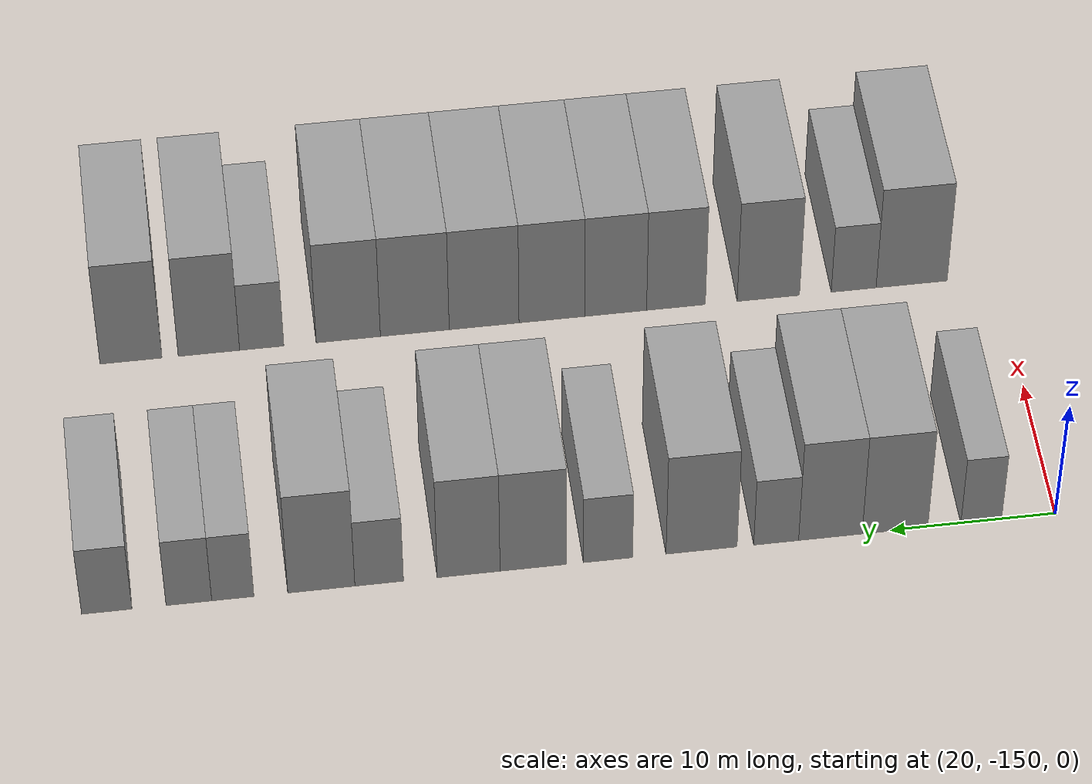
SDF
<sdf version="1.6">
 <world name="default">
  <model name="building_14">
   <static>1</static>
   <pose>25.0000 -145.4668 0 0.000000 0.000000 0.000000</pose>
   <link name="link">
    <pose>0 0 3.00 0 0 0</pose>
    <collision name="collision"><geometry><box><size>10.0000 2.4639 6.0000</size></box></geometry></collision>
    <visual name="visual">
     <cast_shadows>0</cast_shadows>
     <geometry><box><size>10.0000 2.4639 6.0000</size></box></geometry>
     <material>
      <script>
       <uri>model://grey_wall/materials/scripts</uri>
       <uri>model://grey_wall/materials/textures</uri>
       <name>vrc/grey_wall</name>
      </script>
     </material>
    </visual>
   </link>
  </model>
  <model name="building_15">
   <static>1</static>
   <pose>25.0000 -140.2559 0 0.000000 0.000000 0.000000</pose>
   <link name="link">
    <pose>0 0 4.50 0 0 0</pose>
    <collision name="collision"><geometry><box><size>10.0000 3.9579 9.0000</size></box></geometry></collision>
    <visual name="visual">
     <cast_shadows>0</cast_shadows>
     <geometry><box><size>10.0000 3.9579 9.0000</size></box></geometry>
     <material>
      <script>
       <uri>model://grey_wall/materials/scripts</uri>
       <uri>model://grey_wall/materials/textures</uri>
       <name>vrc/grey_wall</name>
      </script>
     </material>
    </visual>
   </link>
  </model>
  <model name="building_16">
   <static>1</static>
   <pose>25.0000 -136.3634 0 0.000000 0.000000 0.000000</pose>
   <link name="link">
    <pose>0 0 4.50 0 0 0</pose>
    <collision name="collision"><geometry><box><size>10.0000 3.8270 9.0000</size></box></geometry></collision>
    <visual name="visual">
     <cast_shadows>0</cast_shadows>
     <geometry><box><size>10.0000 3.8270 9.0000</size></box></geometry>
     <material>
      <script>
       <uri>model://grey_wall/materials/scripts</uri>
       <uri>model://grey_wall/materials/textures</uri>
       <name>vrc/grey_wall</name>
      </script>
     </material>
    </visual>
   </link>
  </model>
  <model name="building_17">
   <static>1</static>
   <pose>25.0000 -133.1001 0 0.000000 0.000000 0.000000</pose>
   <link name="link">
    <pose>0 0 3.00 0 0 0</pose>
    <collision name="collision"><geometry><box><size>10.0000 2.6995 6.0000</size></box></geometry></collision>
    <visual name="visual">
     <cast_shadows>0</cast_shadows>
     <geometry><box><size>10.0000 2.6995 6.0000</size></box></geometry>
     <material>
      <script>
       <uri>model://grey_wall/materials/scripts</uri>
       <uri>model://grey_wall/materials/textures</uri>
       <name>vrc/grey_wall</name>
      </script>
     </material>
    </visual>
   </link>
  </model>
  <model name="building_18">
   <static>1</static>
   <pose>25.0000 -128.6211 0 0.000000 0.000000 0.000000</pose>
   <link name="link">
    <pose>0 0 4.50 0 0 0</pose>
    <collision name="collision"><geometry><box><size>10.0000 4.2584 9.0000</size></box></geometry></collision>
    <visual name="visual">
     <cast_shadows>0</cast_shadows>
     <geometry><box><size>10.0000 4.2584 9.0000</size></box></geometry>
     <material>
      <script>
       <uri>model://grey_wall/materials/scripts</uri>
       <uri>model://grey_wall/materials/textures</uri>
       <name>vrc/grey_wall</name>
      </script>
     </material>
    </visual>
   </link>
  </model>
  <model name="building_19">
   <static>1</static>
   <pose>25.0000 -123.0242 0 0.000000 0.000000 0.000000</pose>
   <link name="link">
    <pose>0 0 3.00 0 0 0</pose>
    <collision name="collision"><geometry><box><size>10.0000 2.9353 6.0000</size></box></geometry></collision>
    <visual name="visual">
     <cast_shadows>0</cast_shadows>
     <geometry><box><size>10.0000 2.9353 6.0000</size></box></geometry>
     <material>
      <script>
       <uri>model://grey_wall/materials/scripts</uri>
       <uri>model://grey_wall/materials/textures</uri>
       <name>vrc/grey_wall</name>
      </script>
     </material>
    </visual>
   </link>
  </model>
  <model name="building_20">
   <static>1</static>
   <pose>25.0000 -118.5763 0 0.000000 0.000000 0.000000</pose>
   <link name="link">
    <pose>0 0 4.50 0 0 0</pose>
    <collision name="collision"><geometry><box><size>10.0000 3.9605 9.0000</size></box></geometry></collision>
    <visual name="visual">
     <cast_shadows>0</cast_shadows>
     <geometry><box><size>10.0000 3.9605 9.0000</size></box></geometry>
     <material>
      <script>
       <uri>model://grey_wall/materials/scripts</uri>
       <uri>model://grey_wall/materials/textures</uri>
       <name>vrc/grey_wall</name>
      </script>
     </material>
    </visual>
   </link>
  </model>
  <model name="building_21">
   <static>1</static>
   <pose>25.0000 -114.7280 0 0.000000 0.000000 0.000000</pose>
   <link name="link">
    <pose>0 0 4.50 0 0 0</pose>
    <collision name="collision"><geometry><box><size>10.0000 3.7361 9.0000</size></box></geometry></collision>
    <visual name="visual">
     <cast_shadows>0</cast_shadows>
     <geometry><box><size>10.0000 3.7361 9.0000</size></box></geometry>
     <material>
      <script>
       <uri>model://grey_wall/materials/scripts</uri>
       <uri>model://grey_wall/materials/textures</uri>
       <name>vrc/grey_wall</name>
      </script>
     </material>
    </visual>
   </link>
  </model>
  <model name="building_22">
   <static>1</static>
   <pose>25.0000 -109.4225 0 0.000000 0.000000 0.000000</pose>
   <link name="link">
    <pose>0 0 3.00 0 0 0</pose>
    <collision name="collision"><geometry><box><size>10.0000 2.8748 6.0000</size></box></geometry></collision>
    <visual name="visual">
     <cast_shadows>0</cast_shadows>
     <geometry><box><size>10.0000 2.8748 6.0000</size></box></geometry>
     <material>
      <script>
       <uri>model://grey_wall/materials/scripts</uri>
       <uri>model://grey_wall/materials/textures</uri>
       <name>vrc/grey_wall</name>
      </script>
     </material>
    </visual>
   </link>
  </model>
  <model name="building_23">
   <static>1</static>
   <pose>25.0000 -106.0027 0 0.000000 0.000000 0.000000</pose>
   <link name="link">
    <pose>0 0 4.50 0 0 0</pose>
    <collision name="collision"><geometry><box><size>10.0000 3.9648 9.0000</size></box></geometry></collision>
    <visual name="visual">
     <cast_shadows>0</cast_shadows>
     <geometry><box><size>10.0000 3.9648 9.0000</size></box></geometry>
     <material>
      <script>
       <uri>model://grey_wall/materials/scripts</uri>
       <uri>model://grey_wall/materials/textures</uri>
       <name>vrc/grey_wall</name>
      </script>
     </material>
    </visual>
   </link>
  </model>
  <model name="building_24">
   <static>1</static>
   <pose>25.0000 -100.7795 0 0.000000 0.000000 0.000000</pose>
   <link name="link">
    <pose>0 0 3.00 0 0 0</pose>
    <collision name="collision"><geometry><box><size>10.0000 2.4816 6.0000</size></box></geometry></collision>
    <visual name="visual">
     <cast_shadows>0</cast_shadows>
     <geometry><box><size>10.0000 2.4816 6.0000</size></box></geometry>
     <material>
      <script>
       <uri>model://grey_wall/materials/scripts</uri>
       <uri>model://grey_wall/materials/textures</uri>
       <name>vrc/grey_wall</name>
      </script>
     </material>
    </visual>
   </link>
  </model>
  <model name="building_25">
   <static>1</static>
   <pose>25.0000 -98.1952 0 0.000000 0.000000 0.000000</pose>
   <link name="link">
    <pose>0 0 3.00 0 0 0</pose>
    <collision name="collision"><geometry><box><size>10.0000 2.6870 6.0000</size></box></geometry></collision>
    <visual name="visual">
     <cast_shadows>0</cast_shadows>
     <geometry><box><size>10.0000 2.6870 6.0000</size></box></geometry>
     <material>
      <script>
       <uri>model://grey_wall/materials/scripts</uri>
       <uri>model://grey_wall/materials/textures</uri>
       <name>vrc/grey_wall</name>
      </script>
     </material>
    </visual>
   </link>
  </model>
  <model name="building_26">
   <static>1</static>
   <pose>25.0000 -93.3757 0 0.000000 0.000000 0.000000</pose>
   <link name="link">
    <pose>0 0 3.00 0 0 0</pose>
    <collision name="collision"><geometry><box><size>10.0000 2.9520 6.0000</size></box></geometry></collision>
    <visual name="visual">
     <cast_shadows>0</cast_shadows>
     <geometry><box><size>10.0000 2.9520 6.0000</size></box></geometry>
     <material>
      <script>
       <uri>model://grey_wall/materials/scripts</uri>
       <uri>model://grey_wall/materials/textures</uri>
       <name>vrc/grey_wall</name>
      </script>
     </material>
    </visual>
   </link>
  </model>
  <model name="building_116">
   <static>1</static>
   <pose>44.0000 -144.6961 0 0.000000 0.000000 0.000000</pose>
   <link name="link">
    <pose>0 0 4.50 0 0 0</pose>
    <collision name="collision"><geometry><box><size>10.0000 4.4870 9.0000</size></box></geometry></collision>
    <visual name="visual">
     <cast_shadows>0</cast_shadows>
     <geometry><box><size>10.0000 4.4870 9.0000</size></box></geometry>
     <material>
      <script>
       <uri>model://grey_wall/materials/scripts</uri>
       <uri>model://grey_wall/materials/textures</uri>
       <name>vrc/grey_wall</name>
      </script>
     </material>
    </visual>
   </link>
  </model>
  <model name="building_117">
   <static>1</static>
   <pose>44.0000 -141.0390 0 0.000000 0.000000 0.000000</pose>
   <link name="link">
    <pose>0 0 3.00 0 0 0</pose>
    <collision name="collision"><geometry><box><size>10.0000 2.8272 6.0000</size></box></geometry></collision>
    <visual name="visual">
     <cast_shadows>0</cast_shadows>
     <geometry><box><size>10.0000 2.8272 6.0000</size></box></geometry>
     <material>
      <script>
       <uri>model://grey_wall/materials/scripts</uri>
       <uri>model://grey_wall/materials/textures</uri>
       <name>vrc/grey_wall</name>
      </script>
     </material>
    </visual>
   </link>
  </model>
  <model name="building_118">
   <static>1</static>
   <pose>44.0000 -135.6671 0 0.000000 0.000000 0.000000</pose>
   <link name="link">
    <pose>0 0 4.50 0 0 0</pose>
    <collision name="collision"><geometry><box><size>10.0000 3.9167 9.0000</size></box></geometry></collision>
    <visual name="visual">
     <cast_shadows>0</cast_shadows>
     <geometry><box><size>10.0000 3.9167 9.0000</size></box></geometry>
     <material>
      <script>
       <uri>model://grey_wall/materials/scripts</uri>
       <uri>model://grey_wall/materials/textures</uri>
       <name>vrc/grey_wall</name>
      </script>
     </material>
    </visual>
   </link>
  </model>
  <model name="building_119">
   <static>1</static>
   <pose>44.0000 -129.8688 0 0.000000 0.000000 0.000000</pose>
   <link name="link">
    <pose>0 0 4.50 0 0 0</pose>
    <collision name="collision"><geometry><box><size>10.0000 3.6798 9.0000</size></box></geometry></collision>
    <visual name="visual">
     <cast_shadows>0</cast_shadows>
     <geometry><box><size>10.0000 3.6798 9.0000</size></box></geometry>
     <material>
      <script>
       <uri>model://grey_wall/materials/scripts</uri>
       <uri>model://grey_wall/materials/textures</uri>
       <name>vrc/grey_wall</name>
      </script>
     </material>
    </visual>
   </link>
  </model>
  <model name="building_120">
   <static>1</static>
   <pose>44.0000 -126.0909 0 0.000000 0.000000 0.000000</pose>
   <link name="link">
    <pose>0 0 4.50 0 0 0</pose>
    <collision name="collision"><geometry><box><size>10.0000 3.8760 9.0000</size></box></geometry></collision>
    <visual name="visual">
     <cast_shadows>0</cast_shadows>
     <geometry><box><size>10.0000 3.8760 9.0000</size></box></geometry>
     <material>
      <script>
       <uri>model://grey_wall/materials/scripts</uri>
       <uri>model://grey_wall/materials/textures</uri>
       <name>vrc/grey_wall</name>
      </script>
     </material>
    </visual>
   </link>
  </model>
  <model name="building_121">
   <static>1</static>
   <pose>44.0000 -122.1092 0 0.000000 0.000000 0.000000</pose>
   <link name="link">
    <pose>0 0 4.50 0 0 0</pose>
    <collision name="collision"><geometry><box><size>10.0000 4.0874 9.0000</size></box></geometry></collision>
    <visual name="visual">
     <cast_shadows>0</cast_shadows>
     <geometry><box><size>10.0000 4.0874 9.0000</size></box></geometry>
     <material>
      <script>
       <uri>model://grey_wall/materials/scripts</uri>
       <uri>model://grey_wall/materials/textures</uri>
       <name>vrc/grey_wall</name>
      </script>
     </material>
    </visual>
   </link>
  </model>
  <model name="building_122">
   <static>1</static>
   <pose>44.0000 -117.8953 0 0.000000 0.000000 0.000000</pose>
   <link name="link">
    <pose>0 0 4.50 0 0 0</pose>
    <collision name="collision"><geometry><box><size>10.0000 4.3404 9.0000</size></box></geometry></collision>
    <visual name="visual">
     <cast_shadows>0</cast_shadows>
     <geometry><box><size>10.0000 4.3404 9.0000</size></box></geometry>
     <material>
      <script>
       <uri>model://grey_wall/materials/scripts</uri>
       <uri>model://grey_wall/materials/textures</uri>
       <name>vrc/grey_wall</name>
      </script>
     </material>
    </visual>
   </link>
  </model>
  <model name="building_123">
   <static>1</static>
   <pose>44.0000 -113.5906 0 0.000000 0.000000 0.000000</pose>
   <link name="link">
    <pose>0 0 4.50 0 0 0</pose>
    <collision name="collision"><geometry><box><size>10.0000 4.2691 9.0000</size></box></geometry></collision>
    <visual name="visual">
     <cast_shadows>0</cast_shadows>
     <geometry><box><size>10.0000 4.2691 9.0000</size></box></geometry>
     <material>
      <script>
       <uri>model://grey_wall/materials/scripts</uri>
       <uri>model://grey_wall/materials/textures</uri>
       <name>vrc/grey_wall</name>
      </script>
     </material>
    </visual>
   </link>
  </model>
  <model name="building_124">
   <static>1</static>
   <pose>44.0000 -109.4698 0 0.000000 0.000000 0.000000</pose>
   <link name="link">
    <pose>0 0 4.50 0 0 0</pose>
    <collision name="collision"><geometry><box><size>10.0000 3.9725 9.0000</size></box></geometry></collision>
    <visual name="visual">
     <cast_shadows>0</cast_shadows>
     <geometry><box><size>10.0000 3.9725 9.0000</size></box></geometry>
     <material>
      <script>
       <uri>model://grey_wall/materials/scripts</uri>
       <uri>model://grey_wall/materials/textures</uri>
       <name>vrc/grey_wall</name>
      </script>
     </material>
    </visual>
   </link>
  </model>
  <model name="building_125">
   <static>1</static>
   <pose>44.0000 -104.1198 0 0.000000 0.000000 0.000000</pose>
   <link name="link">
    <pose>0 0 3.00 0 0 0</pose>
    <collision name="collision"><geometry><box><size>10.0000 2.7274 6.0000</size></box></geometry></collision>
    <visual name="visual">
     <cast_shadows>0</cast_shadows>
     <geometry><box><size>10.0000 2.7274 6.0000</size></box></geometry>
     <material>
      <script>
       <uri>model://grey_wall/materials/scripts</uri>
       <uri>model://grey_wall/materials/textures</uri>
       <name>vrc/grey_wall</name>
      </script>
     </material>
    </visual>
   </link>
  </model>
  <model name="building_126">
   <static>1</static>
   <pose>44.0000 -100.8666 0 0.000000 0.000000 0.000000</pose>
   <link name="link">
    <pose>0 0 4.50 0 0 0</pose>
    <collision name="collision"><geometry><box><size>10.0000 3.7791 9.0000</size></box></geometry></collision>
    <visual name="visual">
     <cast_shadows>0</cast_shadows>
     <geometry><box><size>10.0000 3.7791 9.0000</size></box></geometry>
     <material>
      <script>
       <uri>model://grey_wall/materials/scripts</uri>
       <uri>model://grey_wall/materials/textures</uri>
       <name>vrc/grey_wall</name>
      </script>
     </material>
    </visual>
   </link>
  </model>
  <model name="building_127">
   <static>1</static>
   <pose>44.0000 -96.0746 0 0.000000 0.000000 0.000000</pose>
   <link name="link">
    <pose>0 0 4.50 0 0 0</pose>
    <collision name="collision"><geometry><box><size>10.0000 3.8049 9.0000</size></box></geometry></collision>
    <visual name="visual">
     <cast_shadows>0</cast_shadows>
     <geometry><box><size>10.0000 3.8049 9.0000</size></box></geometry>
     <material>
      <script>
       <uri>model://grey_wall/materials/scripts</uri>
       <uri>model://grey_wall/materials/textures</uri>
       <name>vrc/grey_wall</name>
      </script>
     </material>
    </visual>
   </link>
  </model>
 </world>
</sdf>
